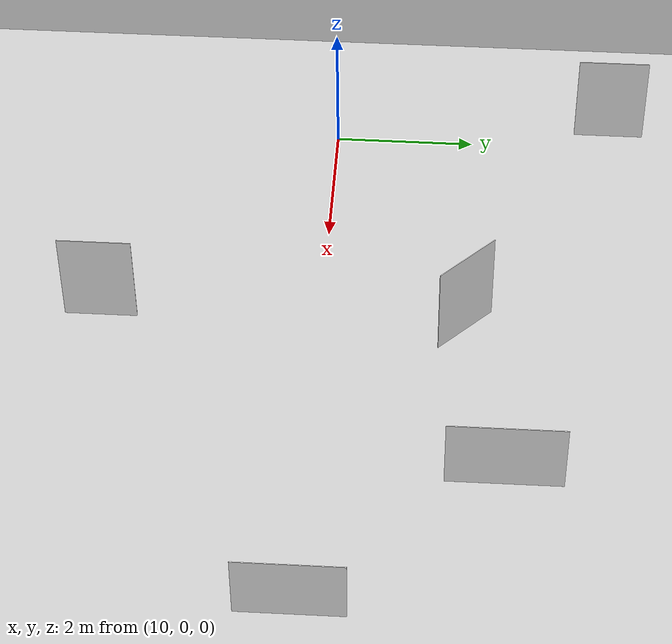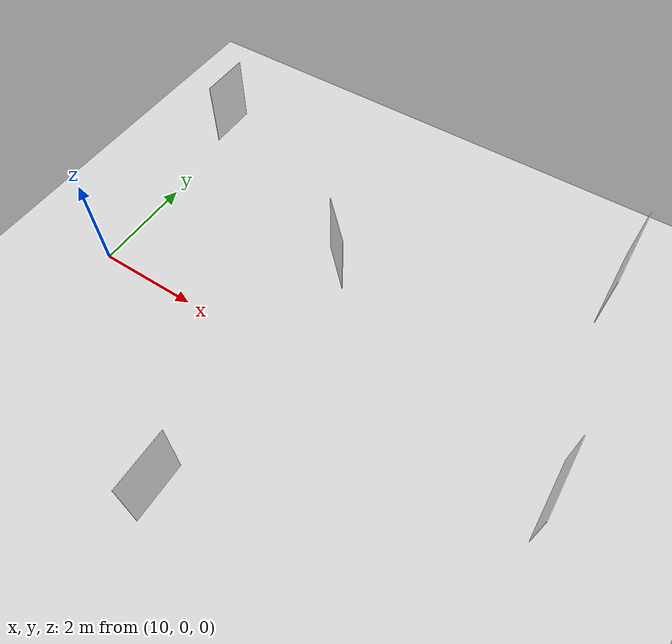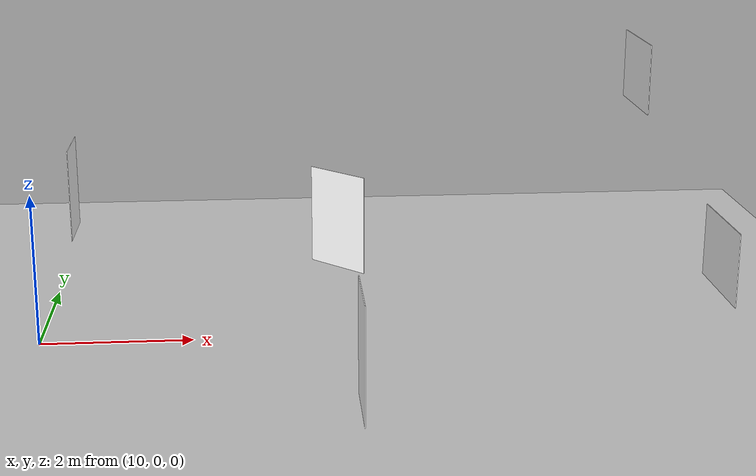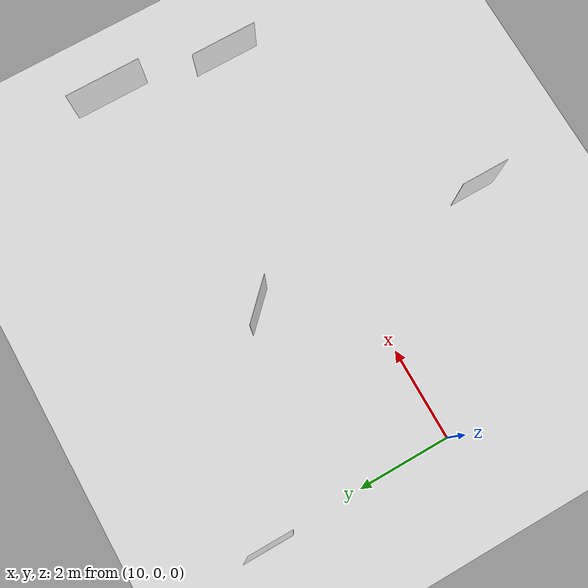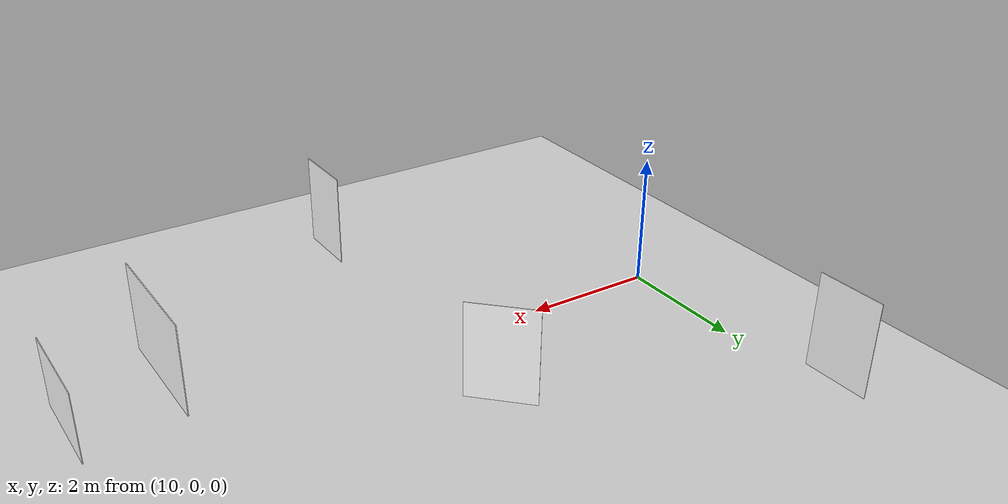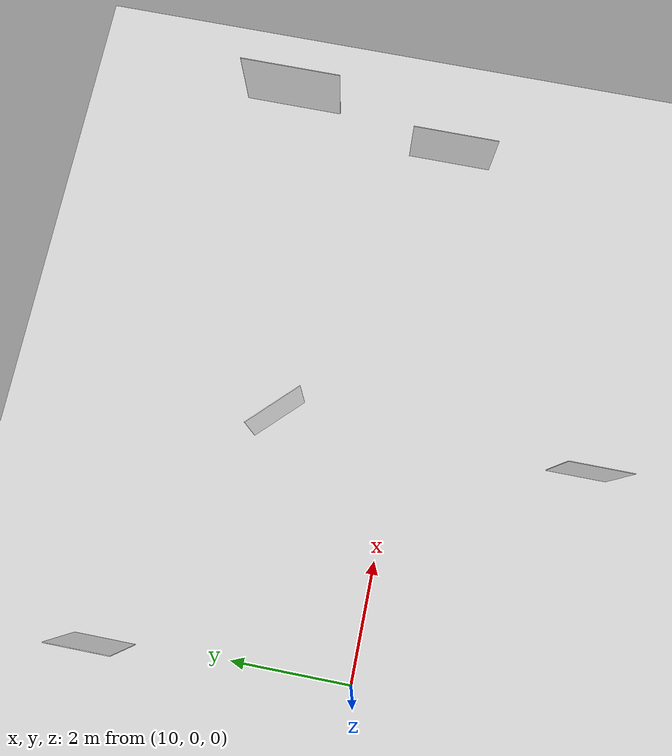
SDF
<sdf version="1.7">
 <world name="default">
  <light name="sun" type="directional">
   <pose>0 0 10 0 -0 0</pose>
   <diffuse>0.8 0.8 0.8 1</diffuse>
   <specular>0.2 0.2 0.2 1</specular>
   <attenuation>
    <range>1000</range>
    <constant>0.9</constant>
    <linear>0.01</linear>
    <quadratic>0.001</quadratic>
   </attenuation>
   <direction>0.5 0.1 -0.9</direction>
   <spot><inner_angle>0</inner_angle><outer_angle>0</outer_angle><falloff>0</falloff></spot>
  </light>
  <model name="ground_plane">
   <static>1</static>
   <link name="link">
    <collision name="collision">
     <geometry><plane><normal>0 0 1</normal><size>100 100</size></plane></geometry>
     <surface>
      <contact><collide_bitmask>65535</collide_bitmask></contact>
      <friction><ode><mu>100</mu><mu2>50</mu2></ode></friction>
     </surface>
    </collision>
    <visual name="visual">
     <cast_shadows>0</cast_shadows>
     <geometry><plane><normal>0 0 1</normal><size>100 100</size></plane></geometry>
     <material>
      <script><uri>file://media/materials/scripts/gazebo.material</uri><name>Gazebo/Grey</name></script>
     </material>
    </visual>
   </link>
  </model>
  <gravity>0 0 -9.8</gravity>
  <magnetic_field>6e-06 2.3e-05 -4.2e-05</magnetic_field>
  <atmosphere type="adiabatic"/>
  <physics type="ode">
   <max_step_size>0.001</max_step_size>
   <real_time_factor>1</real_time_factor>
   <real_time_update_rate>1000</real_time_update_rate>
  </physics>
  <scene><ambient>0.4 0.4 0.4 1</ambient><background>0.7 0.7 0.7 1</background><shadows>1</shadows></scene>
  <spherical_coordinates>
   <surface_model>EARTH_WGS84</surface_model>
   <latitude_deg>0</latitude_deg>
   <longitude_deg>0</longitude_deg>
   <elevation>0</elevation>
   <heading_deg>0</heading_deg>
  </spherical_coordinates>
  <model name="13x9_my_checkerboard">
   <link name="link">
    <inertial>
     <mass>1</mass>
     <inertia>
      <ixx>0.166667</ixx>
      <ixy>0</ixy>
      <ixz>0</ixz>
      <iyy>0.166667</iyy>
      <iyz>0</iyz>
      <izz>0.166667</izz>
     </inertia>
    </inertial>
    <visual name="visual">
     <geometry><box><size>0.01 1.4145 1</size></box></geometry>
     <material>
      <script>
       <name>Checkerboard/13x9</name>
       <uri>/home/kodogyu/.gazebo/models/13x9_my_checkerboard/materials/scripts/checkerboard.material</uri>
      </script>
      <shader type="pixel"><normal_map>__default__</normal_map></shader>
      <ambient>1 1 1 1</ambient>
      <diffuse>1 1 1 1</diffuse>
      <specular>1 1 1 1</specular>
      <emissive>1 1 1 1</emissive>
     </material>
    </visual>
   </link>
   <static>1</static>
   <pose>10 4 1 1.5708 -0 0</pose>
  </model>
  <model name="10x7_my_checkerboard">
   <link name="link">
    <inertial>
     <mass>1</mass>
     <inertia>
      <ixx>0.166667</ixx>
      <ixy>0</ixy>
      <ixz>0</ixz>
      <iyy>0.166667</iyy>
      <iyz>0</iyz>
      <izz>0.166667</izz>
     </inertia>
    </inertial>
    <visual name="visual">
     <geometry><box><size>0.01 1.4144 1</size></box></geometry>
     <material>
      <script>
       <name>Checkerboard/10x7</name>
       <uri>/home/kodogyu/.gazebo/models/10x7_my_checkerboard/materials/scripts/checkerboard.material</uri>
      </script>
      <shader type="pixel"><normal_map>__default__</normal_map></shader>
      <ambient>1 1 1 1</ambient>
      <diffuse>1 1 1 1</diffuse>
      <specular>1 1 1 1</specular>
      <emissive>1 1 1 1</emissive>
     </material>
    </visual>
   </link>
   <static>1</static>
   <pose>14 2 1 1.5708 0 0.785398</pose>
  </model>
  <model name="5x3_my_checkerboard">
   <link name="link">
    <inertial>
     <mass>1</mass>
     <inertia>
      <ixx>0.166667</ixx>
      <ixy>0</ixy>
      <ixz>0</ixz>
      <iyy>0.166667</iyy>
      <iyz>0</iyz>
      <izz>0.166667</izz>
     </inertia>
    </inertial>
    <visual name="visual">
     <geometry><box><size>0.01 1.4145 1</size></box></geometry>
     <material>
      <script>
       <name>Checkerboard/5x3</name>
       <uri>/home/kodogyu/.gazebo/models/5x3_my_checkerboard/materials/scripts/checkerboard.material</uri>
      </script>
      <shader type="pixel"><normal_map>__default__</normal_map></shader>
      <ambient>1 1 1 1</ambient>
      <diffuse>1 1 1 1</diffuse>
      <specular>1 1 1 1</specular>
      <emissive>1 1 1 1</emissive>
     </material>
    </visual>
   </link>
   <static>1</static>
   <pose>19 0 1 0 -0 0</pose>
  </model>
  <model name="7x4_my_checkerboard">
   <link name="link">
    <inertial>
     <mass>1</mass>
     <inertia>
      <ixx>0.166667</ixx>
      <ixy>0</ixy>
      <ixz>0</ixz>
      <iyy>0.166667</iyy>
      <iyz>0</iyz>
      <izz>0.166667</izz>
     </inertia>
    </inertial>
    <visual name="visual">
     <geometry><box><size>0.01 1.4145 1</size></box></geometry>
     <material>
      <script>
       <name>Checkerboard/7x4</name>
       <uri>/home/kodogyu/.gazebo/models/7x4_my_checkerboard/materials/scripts/checkerboard.material</uri>
      </script>
      <shader type="pixel"><normal_map>__default__</normal_map></shader>
      <ambient>1 1 1 1</ambient>
      <diffuse>1 1 1 1</diffuse>
      <specular>1 1 1 1</specular>
      <emissive>1 1 1 1</emissive>
     </material>
    </visual>
   </link>
   <static>1</static>
   <pose>18.4169 2.52468 3 0 -0 0</pose>
  </model>
  <model name="8x6_my_checkerboard">
   <link name="link">
    <inertial>
     <mass>1</mass>
     <inertia>
      <ixx>0.166667</ixx>
      <ixy>0</ixy>
      <ixz>0</ixz>
      <iyy>0.166667</iyy>
      <iyz>0</iyz>
      <izz>0.166667</izz>
     </inertia>
    </inertial>
    <visual name="visual">
     <geometry><box><size>0.01 1.4145 1</size></box></geometry>
     <material>
      <script>
       <name>Checkerboard/8x6</name>
       <uri>/home/kodogyu/.gazebo/models/8x6_my_checkerboard/materials/scripts/checkerboard.material</uri>
      </script>
      <shader type="pixel"><normal_map>__default__</normal_map></shader>
      <ambient>1 1 1 1</ambient>
      <diffuse>1 1 1 1</diffuse>
      <specular>1 1 1 1</specular>
      <emissive>1 1 1 1</emissive>
     </material>
    </visual>
   </link>
   <static>1</static>
   <pose>14 -3 1 1.5708 -0 0</pose>
  </model>
 </world>
</sdf>
